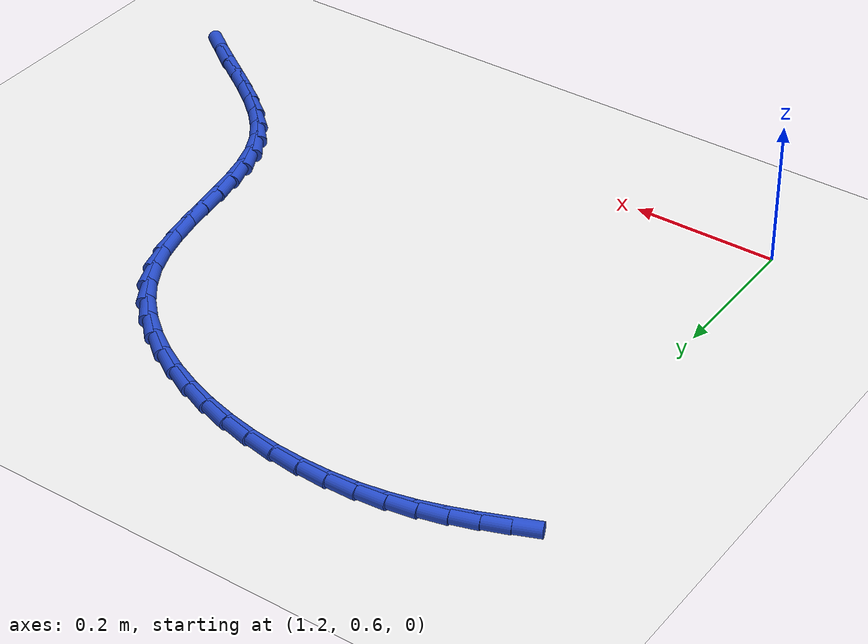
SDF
<sdf version="1.6">
 <world name="default">
  <model name="ground_plane">
   <static>1</static>
   <link name="link">
    <collision name="collision">
     <geometry><plane><normal>0 0 1</normal><size>100 100</size></plane></geometry>
     <surface><friction><ode><mu>100</mu><mu2>50</mu2></ode></friction></surface>
    </collision>
    <visual name="visual">
     <cast_shadows>0</cast_shadows>
     <geometry><plane><normal>0 0 1</normal><size>100 100</size></plane></geometry>
     <material>
      <script><uri>file://media/materials/scripts/gazebo.material</uri><name>Gazebo/WhiteGlow</name></script>
     </material>
    </visual>
   </link>
  </model>
  <model name="line">
   <link name="link_52">
    <pose>1.1918718324390887 1.2218858434625355 0.01 0 1.57 0.3836914871860909</pose>
    <collision name="collision">
     <geometry><cylinder><radius>0.01</radius><length>0.08</length></cylinder></geometry>
    </collision>
    <visual name="visual">
     <material>
      <script><name>Gazebo/Blue</name><uri>file://media/materials/scripts/gazebo.material</uri></script>
     </material>
     <geometry><cylinder><radius>0.01</radius><length>0.08</length></cylinder></geometry>
    </visual>
   </link>
   <link name="link_53">
    <pose>1.2245988064444147 1.2350977049819623 0.01 0 1.57 0.3495733230367328</pose>
    <collision name="collision">
     <geometry><cylinder><radius>0.01</radius><length>0.08</length></cylinder></geometry>
    </collision>
    <visual name="visual">
     <material>
      <script><name>Gazebo/Blue</name><uri>file://media/materials/scripts/gazebo.material</uri></script>
     </material>
     <geometry><cylinder><radius>0.01</radius><length>0.08</length></cylinder></geometry>
    </visual>
   </link>
   <link name="link_54">
    <pose>1.2577656042512653 1.2471884966224733 0.01 0 1.57 0.2974967296565237</pose>
    <collision name="collision">
     <geometry><cylinder><radius>0.01</radius><length>0.08</length></cylinder></geometry>
    </collision>
    <visual name="visual">
     <material>
      <script><name>Gazebo/Blue</name><uri>file://media/materials/scripts/gazebo.material</uri></script>
     </material>
     <geometry><cylinder><radius>0.01</radius><length>0.08</length></cylinder></geometry>
    </visual>
   </link>
   <link name="link_55">
    <pose>1.2918018086473622 1.2576238457891824 0.01 0 1.57 0.22904844200211005</pose>
    <collision name="collision">
     <geometry><cylinder><radius>0.01</radius><length>0.08</length></cylinder></geometry>
    </collision>
    <visual name="visual">
     <material>
      <script><name>Gazebo/Blue</name><uri>file://media/materials/scripts/gazebo.material</uri></script>
     </material>
     <geometry><cylinder><radius>0.01</radius><length>0.08</length></cylinder></geometry>
    </visual>
   </link>
   <link name="link_56">
    <pose>1.3271452004262887 1.2658637992096087 0.01 0 1.57 0.1510803030677481</pose>
    <collision name="collision">
     <geometry><cylinder><radius>0.01</radius><length>0.08</length></cylinder></geometry>
    </collision>
    <visual name="visual">
     <material>
      <script><name>Gazebo/Blue</name><uri>file://media/materials/scripts/gazebo.material</uri></script>
     </material>
     <geometry><cylinder><radius>0.01</radius><length>0.08</length></cylinder></geometry>
    </visual>
   </link>
   <link name="link_57">
    <pose>1.3640583111892282 1.2714834651498395 0.01 0 1.57 0.07689461572539699</pose>
    <collision name="collision">
     <geometry><cylinder><radius>0.01</radius><length>0.08</length></cylinder></geometry>
    </collision>
    <visual name="visual">
     <material>
      <script><name>Gazebo/Blue</name><uri>file://media/materials/scripts/gazebo.material</uri></script>
     </material>
     <geometry><cylinder><radius>0.01</radius><length>0.08</length></cylinder></geometry>
    </visual>
   </link>
   <link name="link_58">
    <pose>1.4022438232430807 1.2744255263011737 0.01 0 1.57 0.007180154449528899</pose>
    <collision name="collision">
     <geometry><cylinder><radius>0.01</radius><length>0.08</length></cylinder></geometry>
    </collision>
    <visual name="visual">
     <material>
      <script><name>Gazebo/Blue</name><uri>file://media/materials/scripts/gazebo.material</uri></script>
     </material>
     <geometry><cylinder><radius>0.01</radius><length>0.08</length></cylinder></geometry>
    </visual>
   </link>
   <link name="link_59">
    <pose>1.4412928617822782 1.2747059092473525 0.01 0 1.57 -0.059805752222324815</pose>
    <collision name="collision">
     <geometry><cylinder><radius>0.01</radius><length>0.08</length></cylinder></geometry>
    </collision>
    <visual name="visual">
     <material>
      <script><name>Gazebo/Blue</name><uri>file://media/materials/scripts/gazebo.material</uri></script>
     </material>
     <geometry><cylinder><radius>0.01</radius><length>0.08</length></cylinder></geometry>
    </visual>
   </link>
   <link name="link_60">
    <pose>1.480796552001252 1.2723405405721167 0.01 0 1.57 -0.12563717878167194</pose>
    <collision name="collision">
     <geometry><cylinder><radius>0.01</radius><length>0.08</length></cylinder></geometry>
    </collision>
    <visual name="visual">
     <material>
      <script><name>Gazebo/Blue</name><uri>file://media/materials/scripts/gazebo.material</uri></script>
     </material>
     <geometry><cylinder><radius>0.01</radius><length>0.08</length></cylinder></geometry>
    </visual>
   </link>
   <link name="link_61">
    <pose>1.5203460190944327 1.2673453468592069 0.01 0 1.57 -0.19179031704078175</pose>
    <collision name="collision">
     <geometry><cylinder><radius>0.01</radius><length>0.08</length></cylinder></geometry>
    </collision>
    <visual name="visual">
     <material>
      <script><name>Gazebo/Blue</name><uri>file://media/materials/scripts/gazebo.material</uri></script>
     </material>
     <geometry><cylinder><radius>0.01</radius><length>0.08</length></cylinder></geometry>
    </visual>
   </link>
   <link name="link_62">
    <pose>1.559532388256252 1.2597362546923647 0.01 0 1.57 -0.25970841203757067</pose>
    <collision name="collision">
     <geometry><cylinder><radius>0.01</radius><length>0.08</length></cylinder></geometry>
    </collision>
    <visual name="visual">
     <material>
      <script><name>Gazebo/Blue</name><uri>file://media/materials/scripts/gazebo.material</uri></script>
     </material>
     <geometry><cylinder><radius>0.01</radius><length>0.08</length></cylinder></geometry>
    </visual>
   </link>
   <link name="link_63">
    <pose>1.5979467846811415 1.24952919065533 0.01 0 1.57 -0.33085771131666547</pose>
    <collision name="collision">
     <geometry><cylinder><radius>0.01</radius><length>0.08</length></cylinder></geometry>
    </collision>
    <visual name="visual">
     <material>
      <script><name>Gazebo/Blue</name><uri>file://media/materials/scripts/gazebo.material</uri></script>
     </material>
     <geometry><cylinder><radius>0.01</radius><length>0.08</length></cylinder></geometry>
    </visual>
   </link>
   <link name="link_64">
    <pose>1.6351803335635327 1.2367400813318457 0.01 0 1.57 -0.4067698905890832</pose>
    <collision name="collision">
     <geometry><cylinder><radius>0.01</radius><length>0.08</length></cylinder></geometry>
    </collision>
    <visual name="visual">
     <material>
      <script><name>Gazebo/Blue</name><uri>file://media/materials/scripts/gazebo.material</uri></script>
     </material>
     <geometry><cylinder><radius>0.01</radius><length>0.08</length></cylinder></geometry>
    </visual>
   </link>
   <link name="link_65">
    <pose>1.670824160097856 1.2213848533056508 0.01 0 1.57 -0.4890613343130064</pose>
    <collision name="collision">
     <geometry><cylinder><radius>0.01</radius><length>0.08</length></cylinder></geometry>
    </collision>
    <visual name="visual">
     <material>
      <script><name>Gazebo/Blue</name><uri>file://media/materials/scripts/gazebo.material</uri></script>
     </material>
     <geometry><cylinder><radius>0.01</radius><length>0.08</length></cylinder></geometry>
    </visual>
   </link>
   <link name="link_66">
    <pose>1.7044693894785439 1.203479433160487 0.01 0 1.57 -0.5794105340813437</pose>
    <collision name="collision">
     <geometry><cylinder><radius>0.01</radius><length>0.08</length></cylinder></geometry>
    </collision>
    <visual name="visual">
     <material>
      <script><name>Gazebo/Blue</name><uri>file://media/materials/scripts/gazebo.material</uri></script>
     </material>
     <geometry><cylinder><radius>0.01</radius><length>0.08</length></cylinder></geometry>
    </visual>
   </link>
   <link name="link_67">
    <pose>1.735707146900027 1.1830397474800958 0.01 0 1.57 -0.6794621371061317</pose>
    <collision name="collision">
     <geometry><cylinder><radius>0.01</radius><length>0.08</length></cylinder></geometry>
    </collision>
    <visual name="visual">
     <material>
      <script><name>Gazebo/Blue</name><uri>file://media/materials/scripts/gazebo.material</uri></script>
     </material>
     <geometry><cylinder><radius>0.01</radius><length>0.08</length></cylinder></geometry>
    </visual>
   </link>
   <link name="link_68">
    <pose>1.7641285575567367 1.1600817228482179 0.01 0 1.57 -0.7906145691643144</pose>
    <collision name="collision">
     <geometry><cylinder><radius>0.01</radius><length>0.08</length></cylinder></geometry>
    </collision>
    <visual name="visual">
     <material>
      <script><name>Gazebo/Blue</name><uri>file://media/materials/scripts/gazebo.material</uri></script>
     </material>
     <geometry><cylinder><radius>0.01</radius><length>0.08</length></cylinder></geometry>
    </visual>
   </link>
   <link name="link_69">
    <pose>1.789324746643105 1.1346212858485933 0.01 0 1.57 -0.9136532449403916</pose>
    <collision name="collision">
     <geometry><cylinder><radius>0.01</radius><length>0.08</length></cylinder></geometry>
    </collision>
    <visual name="visual">
     <material>
      <script><name>Gazebo/Blue</name><uri>file://media/materials/scripts/gazebo.material</uri></script>
     </material>
     <geometry><cylinder><radius>0.01</radius><length>0.08</length></cylinder></geometry>
    </visual>
   </link>
   <link name="link_70">
    <pose>1.8108868393535629 1.1066743630649645 0.01 0 1.57 -1.048244124482746</pose>
    <collision name="collision">
     <geometry><cylinder><radius>0.01</radius><length>0.08</length></cylinder></geometry>
    </collision>
    <visual name="visual">
     <material>
      <script><name>Gazebo/Blue</name><uri>file://media/materials/scripts/gazebo.material</uri></script>
     </material>
     <geometry><cylinder><radius>0.01</radius><length>0.08</length></cylinder></geometry>
    </visual>
   </link>
   <link name="link_71">
    <pose>1.8284059608825411 1.0762568810810713 0.01 0 1.57 -1.1879264139602956</pose>
    <collision name="collision">
     <geometry><cylinder><radius>0.01</radius><length>0.08</length></cylinder></geometry>
    </collision>
    <visual name="visual">
     <material>
      <script><name>Gazebo/Blue</name><uri>file://media/materials/scripts/gazebo.material</uri></script>
     </material>
     <geometry><cylinder><radius>0.01</radius><length>0.08</length></cylinder></geometry>
    </visual>
   </link>
   <link name="link_72">
    <pose>1.8416197596820878 1.0434474812581143 0.01 0 1.57 -1.3008192775604723</pose>
    <collision name="collision">
     <geometry><cylinder><radius>0.01</radius><length>0.08</length></cylinder></geometry>
    </collision>
    <visual name="visual">
     <material>
      <script><name>Gazebo/Blue</name><uri>file://media/materials/scripts/gazebo.material</uri></script>
     </material>
     <geometry><cylinder><radius>0.01</radius><length>0.08</length></cylinder></geometry>
    </visual>
   </link>
   <link name="link_73">
    <pose>1.851225691722106 1.0087356210684364 0.01 0 1.57 -1.3763448915019312</pose>
    <collision name="collision">
     <geometry><cylinder><radius>0.01</radius><length>0.08</length></cylinder></geometry>
    </collision>
    <visual name="visual">
     <material>
      <script><name>Gazebo/Blue</name><uri>file://media/materials/scripts/gazebo.material</uri></script>
     </material>
     <geometry><cylinder><radius>0.01</radius><length>0.08</length></cylinder></geometry>
    </visual>
   </link>
   <link name="link_74">
    <pose>1.858307552627886 0.9727761188008506 0.01 0 1.57 -1.4176318183195047</pose>
    <collision name="collision">
     <geometry><cylinder><radius>0.01</radius><length>0.08</length></cylinder></geometry>
    </collision>
    <visual name="visual">
     <material>
      <script><name>Gazebo/Blue</name><uri>file://media/materials/scripts/gazebo.material</uri></script>
     </material>
     <geometry><cylinder><radius>0.01</radius><length>0.08</length></cylinder></geometry>
    </visual>
   </link>
   <link name="link_75">
    <pose>1.8639501957796238 0.9362242454836501 0.01 0 1.57 -1.4268702929997736</pose>
    <collision name="collision">
     <geometry><cylinder><radius>0.01</radius><length>0.08</length></cylinder></geometry>
    </collision>
    <visual name="visual">
     <material>
      <script><name>Gazebo/Blue</name><uri>file://media/materials/scripts/gazebo.material</uri></script>
     </material>
     <geometry><cylinder><radius>0.01</radius><length>0.08</length></cylinder></geometry>
    </visual>
   </link>
   <link name="link_76">
    <pose>1.8692384745575144 0.8997352721451277 0.01 0 1.57 -1.4040985261394905</pose>
    <collision name="collision">
     <geometry><cylinder><radius>0.01</radius><length>0.08</length></cylinder></geometry>
    </collision>
    <visual name="visual">
     <material>
      <script><name>Gazebo/Blue</name><uri>file://media/materials/scripts/gazebo.material</uri></script>
     </material>
     <geometry><cylinder><radius>0.01</radius><length>0.08</length></cylinder></geometry>
    </visual>
   </link>
   <link name="link_77">
    <pose>1.8752572423417517 0.8639644698135764 0.01 0 1.57 -1.3468628635485378</pose>
    <collision name="collision">
     <geometry><cylinder><radius>0.01</radius><length>0.08</length></cylinder></geometry>
    </collision>
    <visual name="visual">
     <material>
      <script><name>Gazebo/Blue</name><uri>file://media/materials/scripts/gazebo.material</uri></script>
     </material>
     <geometry><cylinder><radius>0.01</radius><length>0.08</length></cylinder></geometry>
    </visual>
   </link>
   <link name="link_78">
    <pose>1.8830913525125301 0.8295671095172884 0.01 0 1.57 -1.2505825760809968</pose>
    <collision name="collision">
     <geometry><cylinder><radius>0.01</radius><length>0.08</length></cylinder></geometry>
    </collision>
    <visual name="visual">
     <material>
      <script><name>Gazebo/Blue</name><uri>file://media/materials/scripts/gazebo.material</uri></script>
     </material>
     <geometry><cylinder><radius>0.01</radius><length>0.08</length></cylinder></geometry>
    </visual>
   </link>
   <link name="link_79">
    <pose>1.8938256584500455 0.7971984622845566 0.01 0 1.57 -1.1108161293282333</pose>
    <collision name="collision">
     <geometry><cylinder><radius>0.01</radius><length>0.08</length></cylinder></geometry>
    </collision>
    <visual name="visual">
     <material>
      <script><name>Gazebo/Blue</name><uri>file://media/materials/scripts/gazebo.material</uri></script>
     </material>
     <geometry><cylinder><radius>0.01</radius><length>0.08</length></cylinder></geometry>
    </visual>
   </link>
   <link name="link_80">
    <pose>1.9085354161791954 0.767507218855628 0.01 0 1.57 -0.9514670862350821</pose>
    <collision name="collision">
     <geometry><cylinder><radius>0.01</radius><length>0.08</length></cylinder></geometry>
    </collision>
    <visual name="visual">
     <material>
      <script><name>Gazebo/Blue</name><uri>file://media/materials/scripts/gazebo.material</uri></script>
     </material>
     <geometry><cylinder><radius>0.01</radius><length>0.08</length></cylinder></geometry>
    </visual>
   </link>
   <link name="link_81">
    <pose>1.9276478150879193 0.7406977324410486 0.01 0 1.57 -0.8180963661991288</pose>
    <collision name="collision">
     <geometry><cylinder><radius>0.01</radius><length>0.08</length></cylinder></geometry>
    </collision>
    <visual name="visual">
     <material>
      <script><name>Gazebo/Blue</name><uri>file://media/materials/scripts/gazebo.material</uri></script>
     </material>
     <geometry><cylinder><radius>0.01</radius><length>0.08</length></cylinder></geometry>
    </visual>
   </link>
   <link name="link_82">
    <pose>1.9505416517551404 0.7162555408636425 0.01 0 1.57 -0.7175437458545639</pose>
    <collision name="collision">
     <geometry><cylinder><radius>0.01</radius><length>0.08</length></cylinder></geometry>
    </collision>
    <visual name="visual">
     <material>
      <script><name>Gazebo/Blue</name><uri>file://media/materials/scripts/gazebo.material</uri></script>
     </material>
     <geometry><cylinder><radius>0.01</radius><length>0.08</length></cylinder></geometry>
    </visual>
   </link>
   <link name="link_83">
    <pose>1.9765002062303925 0.6936006924173899 0.01 0 1.57 -0.6484015484913899</pose>
    <collision name="collision">
     <geometry><cylinder><radius>0.01</radius><length>0.08</length></cylinder></geometry>
    </collision>
    <visual name="visual">
     <material>
      <script><name>Gazebo/Blue</name><uri>file://media/materials/scripts/gazebo.material</uri></script>
     </material>
     <geometry><cylinder><radius>0.01</radius><length>0.08</length></cylinder></geometry>
    </visual>
   </link>
   <link name="link_84">
    <pose>2.004806758563208 0.67215323539627 0.01 0 1.57 -0.6076601861337262</pose>
    <collision name="collision">
     <geometry><cylinder><radius>0.01</radius><length>0.08</length></cylinder></geometry>
    </collision>
    <visual name="visual">
     <material>
      <script><name>Gazebo/Blue</name><uri>file://media/materials/scripts/gazebo.material</uri></script>
     </material>
     <geometry><cylinder><radius>0.01</radius><length>0.08</length></cylinder></geometry>
    </visual>
   </link>
   <link name="link_85">
    <pose>2.0347445888031235 0.6513332180942628 0.01 0 1.57 -0.5925723056267691</pose>
    <collision name="collision">
     <geometry><cylinder><radius>0.01</radius><length>0.08</length></cylinder></geometry>
    </collision>
    <visual name="visual">
     <material>
      <script><name>Gazebo/Blue</name><uri>file://media/materials/scripts/gazebo.material</uri></script>
     </material>
     <geometry><cylinder><radius>0.01</radius><length>0.08</length></cylinder></geometry>
    </visual>
   </link>
   <link name="link_86">
    <pose>2.06559697699967 0.6305606888053478 0.01 0 1.57 -0.6013674357572023</pose>
    <collision name="collision">
     <geometry><cylinder><radius>0.01</radius><length>0.08</length></cylinder></geometry>
    </collision>
    <visual name="visual">
     <material>
      <script><name>Gazebo/Blue</name><uri>file://media/materials/scripts/gazebo.material</uri></script>
     </material>
     <geometry><cylinder><radius>0.01</radius><length>0.08</length></cylinder></geometry>
    </visual>
   </link>
   <link name="link_87">
    <pose>2.0966472032023815 0.6092556958235048 0.01 0 1.57 -0.6333397539335717</pose>
    <collision name="collision">
     <geometry><cylinder><radius>0.01</radius><length>0.08</length></cylinder></geometry>
    </collision>
    <visual name="visual">
     <material>
      <script><name>Gazebo/Blue</name><uri>file://media/materials/scripts/gazebo.material</uri></script>
     </material>
     <geometry><cylinder><radius>0.01</radius><length>0.08</length></cylinder></geometry>
    </visual>
   </link>
  </model>
 </world>
</sdf>
